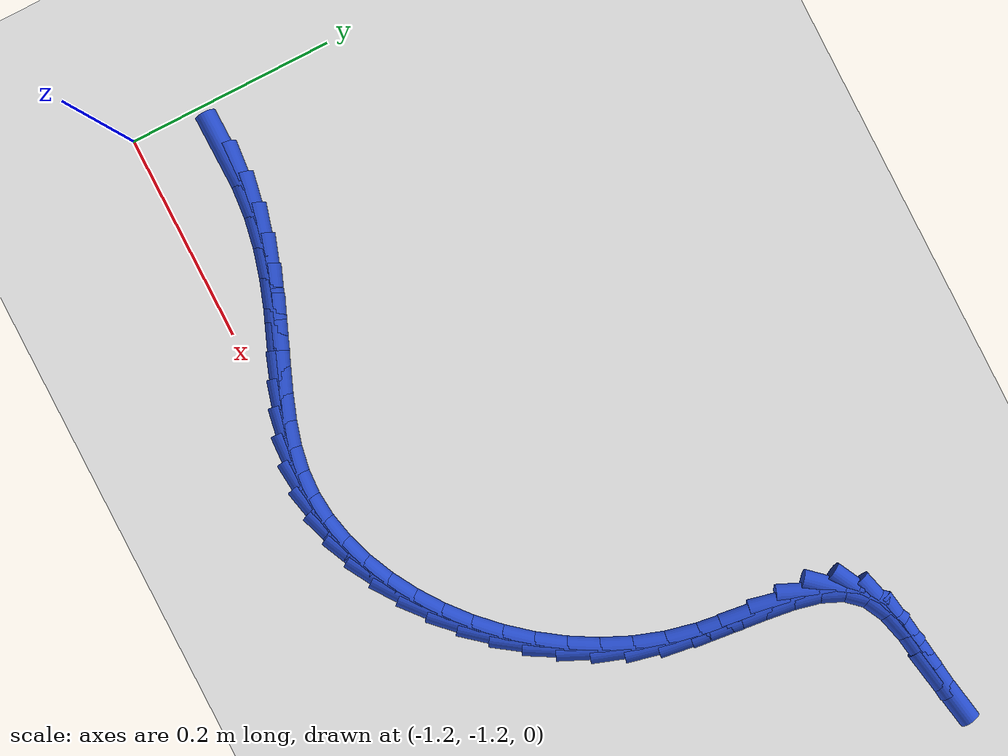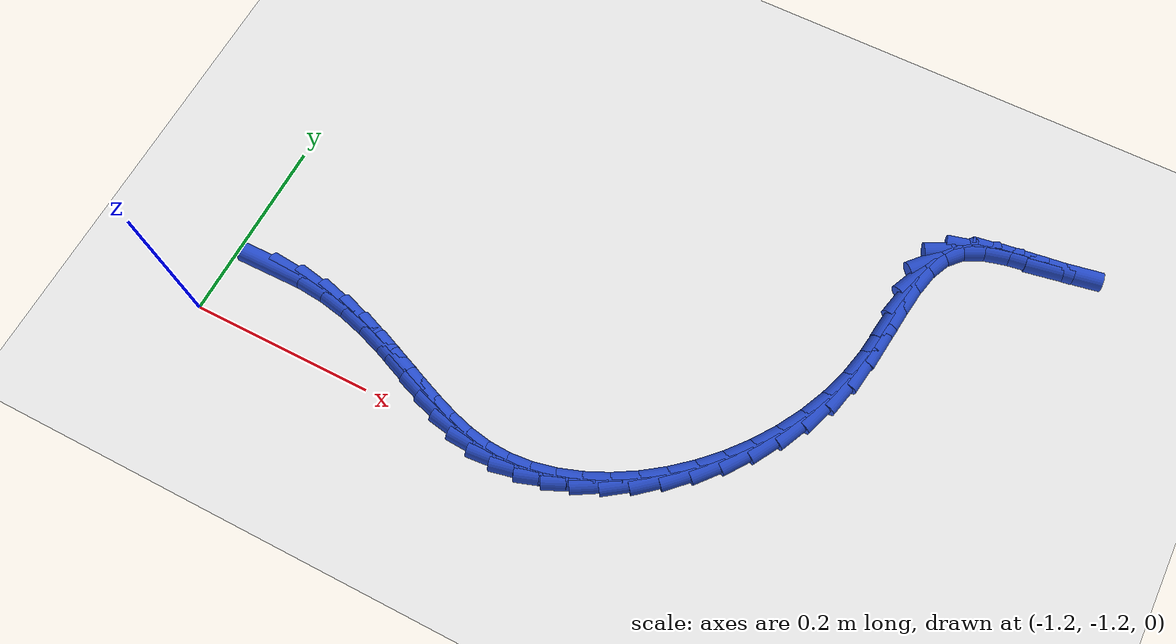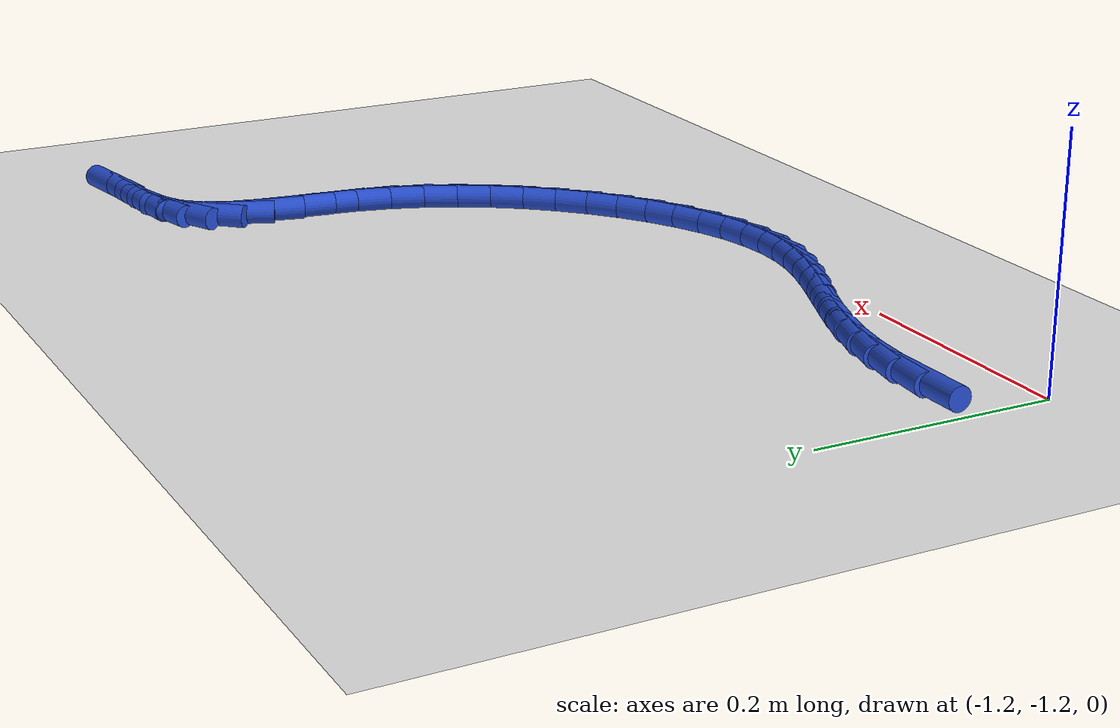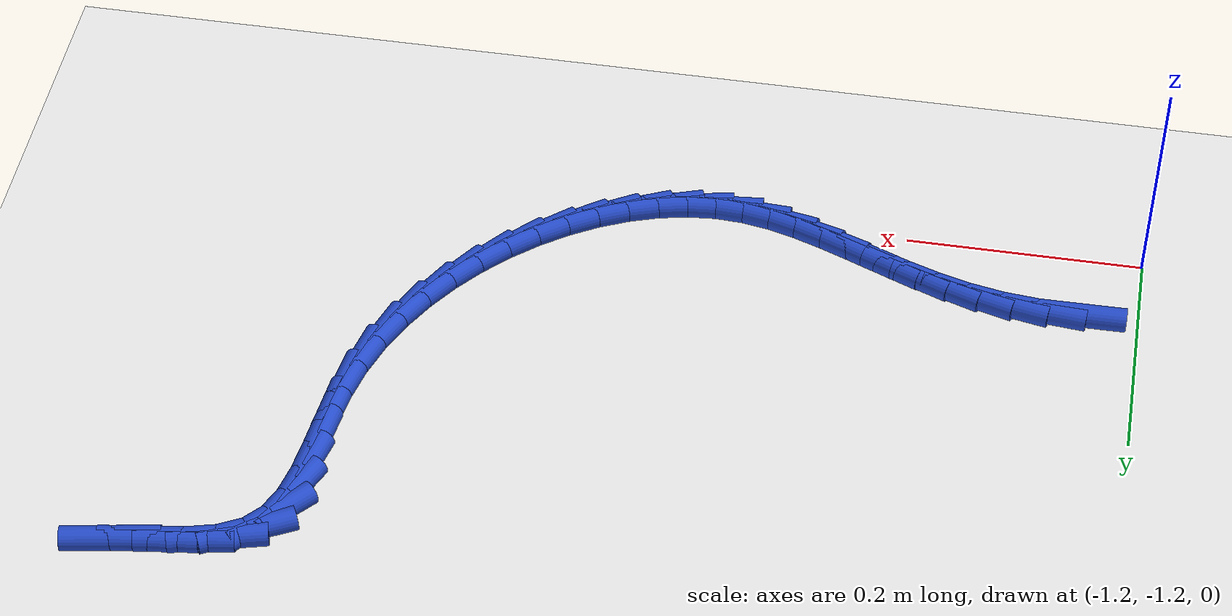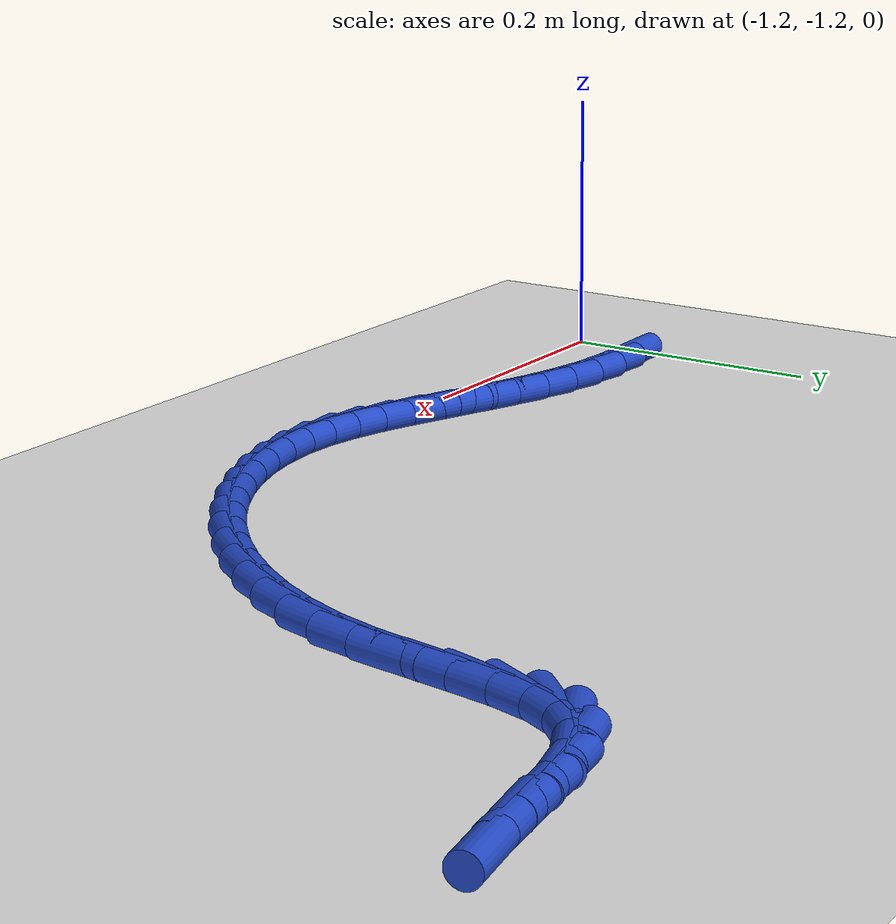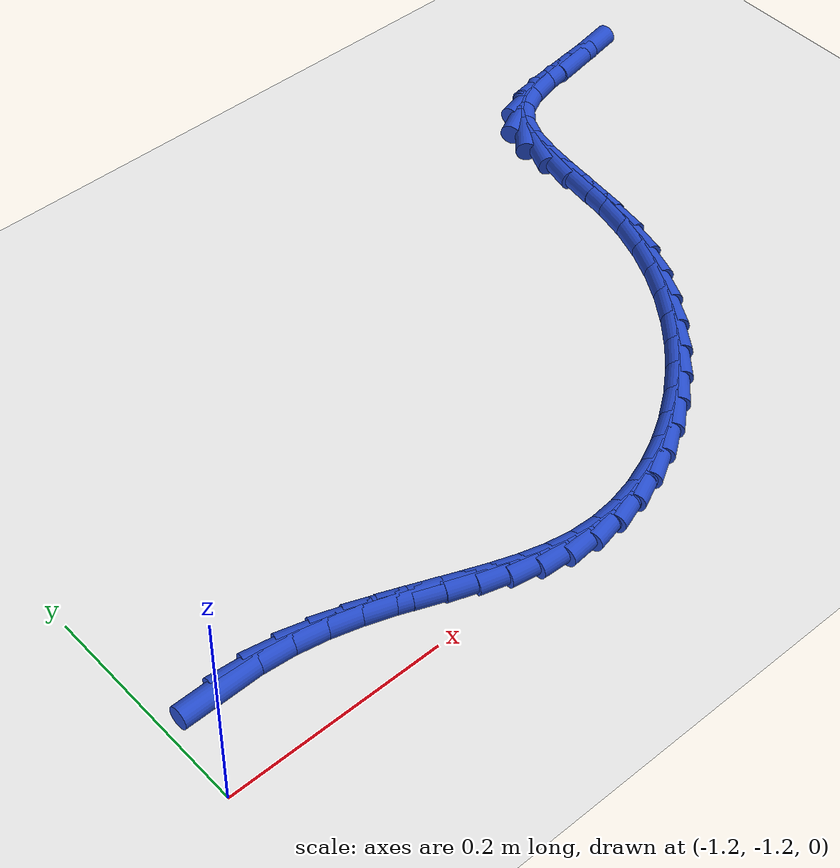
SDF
<sdf version="1.6">
 <world name="default">
  <model name="ground_plane">
   <static>1</static>
   <link name="link">
    <collision name="collision">
     <geometry><plane><normal>0 0 1</normal><size>100 100</size></plane></geometry>
     <surface><friction><ode><mu>100</mu><mu2>50</mu2></ode></friction></surface>
    </collision>
    <visual name="visual">
     <cast_shadows>0</cast_shadows>
     <geometry><plane><normal>0 0 1</normal><size>100 100</size></plane></geometry>
     <material>
      <script><uri>file://media/materials/scripts/gazebo.material</uri><name>Gazebo/WhiteGlow</name></script>
     </material>
    </visual>
   </link>
  </model>
  <model name="line">
   <link name="link_220">
    <pose>-1.1498865652899333 -1.1282311060308476 0.01 0 1.57 0.01088666979280552</pose>
    <collision name="collision">
     <geometry><cylinder><radius>0.01</radius><length>0.08</length></cylinder></geometry>
    </collision>
    <visual name="visual">
     <material>
      <script><name>Gazebo/Blue</name><uri>file://media/materials/scripts/gazebo.material</uri></script>
     </material>
     <geometry><cylinder><radius>0.01</radius><length>0.08</length></cylinder></geometry>
    </visual>
   </link>
   <link name="link_221">
    <pose>-1.1173441668186235 -1.1278768136874542 0.01 0 1.57 -0.0900187390896516</pose>
    <collision name="collision">
     <geometry><cylinder><radius>0.01</radius><length>0.08</length></cylinder></geometry>
    </collision>
    <visual name="visual">
     <material>
      <script><name>Gazebo/Blue</name><uri>file://media/materials/scripts/gazebo.material</uri></script>
     </material>
     <geometry><cylinder><radius>0.01</radius><length>0.08</length></cylinder></geometry>
    </visual>
   </link>
   <link name="link_222">
    <pose>-1.0865902126110436 -1.1306527480653084 0.01 0 1.57 -0.1890162700893553</pose>
    <collision name="collision">
     <geometry><cylinder><radius>0.01</radius><length>0.08</length></cylinder></geometry>
    </collision>
    <visual name="visual">
     <material>
      <script><name>Gazebo/Blue</name><uri>file://media/materials/scripts/gazebo.material</uri></script>
     </material>
     <geometry><cylinder><radius>0.01</radius><length>0.08</length></cylinder></geometry>
    </visual>
   </link>
   <link name="link_223">
    <pose>-1.0575758066208154 -1.1362032014689685 0.01 0 1.57 -0.27192037209295516</pose>
    <collision name="collision">
     <geometry><cylinder><radius>0.01</radius><length>0.08</length></cylinder></geometry>
    </collision>
    <visual name="visual">
     <material>
      <script><name>Gazebo/Blue</name><uri>file://media/materials/scripts/gazebo.material</uri></script>
     </material>
     <geometry><cylinder><radius>0.01</radius><length>0.08</length></cylinder></geometry>
    </visual>
   </link>
   <link name="link_224">
    <pose>-1.0300545272022694 -1.14387686901477 0.01 0 1.57 -0.3349607119613422</pose>
    <collision name="collision">
     <geometry><cylinder><radius>0.01</radius><length>0.08</length></cylinder></geometry>
    </collision>
    <visual name="visual">
     <material>
      <script><name>Gazebo/Blue</name><uri>file://media/materials/scripts/gazebo.material</uri></script>
     </material>
     <geometry><cylinder><radius>0.01</radius><length>0.08</length></cylinder></geometry>
    </visual>
   </link>
   <link name="link_225">
    <pose>-1.0037799527097366 -1.1530224458190488 0.01 0 1.57 -0.37560103164478287</pose>
    <collision name="collision">
     <geometry><cylinder><radius>0.01</radius><length>0.08</length></cylinder></geometry>
    </collision>
    <visual name="visual">
     <material>
      <script><name>Gazebo/Blue</name><uri>file://media/materials/scripts/gazebo.material</uri></script>
     </material>
     <geometry><cylinder><radius>0.01</radius><length>0.08</length></cylinder></geometry>
    </visual>
   </link>
   <link name="link_226">
    <pose>-0.9785056614975474 -1.1629886269981395 0.01 0 1.57 -0.39196040534558957</pose>
    <collision name="collision">
     <geometry><cylinder><radius>0.01</radius><length>0.08</length></cylinder></geometry>
    </collision>
    <visual name="visual">
     <material>
      <script><name>Gazebo/Blue</name><uri>file://media/materials/scripts/gazebo.material</uri></script>
     </material>
     <geometry><cylinder><radius>0.01</radius><length>0.08</length></cylinder></geometry>
    </visual>
   </link>
   <link name="link_227">
    <pose>-0.9539852319200326 -1.1731241076683792 0.01 0 1.57 -0.3822384118539963</pose>
    <collision name="collision">
     <geometry><cylinder><radius>0.01</radius><length>0.08</length></cylinder></geometry>
    </collision>
    <visual name="visual">
     <material>
      <script><name>Gazebo/Blue</name><uri>file://media/materials/scripts/gazebo.material</uri></script>
     </material>
     <geometry><cylinder><radius>0.01</radius><length>0.08</length></cylinder></geometry>
    </visual>
   </link>
   <link name="link_228">
    <pose>-0.929972242331523 -1.1827775829461027 0.01 0 1.57 -0.3444166726869804</pose>
    <collision name="collision">
     <geometry><cylinder><radius>0.01</radius><length>0.08</length></cylinder></geometry>
    </collision>
    <visual name="visual">
     <material>
      <script><name>Gazebo/Blue</name><uri>file://media/materials/scripts/gazebo.material</uri></script>
     </material>
     <geometry><cylinder><radius>0.01</radius><length>0.08</length></cylinder></geometry>
    </visual>
   </link>
   <link name="link_229">
    <pose>-0.9062202710863491 -1.1912977479476456 0.01 0 1.57 -0.2764854024331126</pose>
    <collision name="collision">
     <geometry><cylinder><radius>0.01</radius><length>0.08</length></cylinder></geometry>
    </collision>
    <visual name="visual">
     <material>
      <script><name>Gazebo/Blue</name><uri>file://media/materials/scripts/gazebo.material</uri></script>
     </material>
     <geometry><cylinder><radius>0.01</radius><length>0.08</length></cylinder></geometry>
    </visual>
   </link>
   <link name="link_230">
    <pose>-0.8824828965388418 -1.198033297789344 0.01 0 1.57 -0.1774937372604646</pose>
    <collision name="collision">
     <geometry><cylinder><radius>0.01</radius><length>0.08</length></cylinder></geometry>
    </collision>
    <visual name="visual">
     <material>
      <script><name>Gazebo/Blue</name><uri>file://media/materials/scripts/gazebo.material</uri></script>
     </material>
     <geometry><cylinder><radius>0.01</radius><length>0.08</length></cylinder></geometry>
    </visual>
   </link>
   <link name="link_231">
    <pose>-0.8585136970433318 -1.2023329275875332 0.01 0 1.57 -0.04981537293117946</pose>
    <collision name="collision">
     <geometry><cylinder><radius>0.01</radius><length>0.08</length></cylinder></geometry>
    </collision>
    <visual name="visual">
     <material>
      <script><name>Gazebo/Blue</name><uri>file://media/materials/scripts/gazebo.material</uri></script>
     </material>
     <geometry><cylinder><radius>0.01</radius><length>0.08</length></cylinder></geometry>
    </visual>
   </link>
   <link name="link_232">
    <pose>-0.834070172733832 -1.2035515991070314 0.01 0 1.57 0.08734566797505698</pose>
    <collision name="collision">
     <geometry><cylinder><radius>0.01</radius><length>0.08</length></cylinder></geometry>
    </collision>
    <visual name="visual">
     <material>
      <script><name>Gazebo/Blue</name><uri>file://media/materials/scripts/gazebo.material</uri></script>
     </material>
     <geometry><cylinder><radius>0.01</radius><length>0.08</length></cylinder></geometry>
    </visual>
   </link>
   <link name="link_233">
    <pose>-0.8091111502045506 -1.2013659755488426 0.01 0 1.57 0.21256745456513768</pose>
    <collision name="collision">
     <geometry><cylinder><radius>0.01</radius><length>0.08</length></cylinder></geometry>
    </collision>
    <visual name="visual">
     <material>
      <script><name>Gazebo/Blue</name><uri>file://media/materials/scripts/gazebo.material</uri></script>
     </material>
     <geometry><cylinder><radius>0.01</radius><length>0.08</length></cylinder></geometry>
    </visual>
   </link>
   <link name="link_234">
    <pose>-0.7838893995719295 -1.1959224152209633 0.01 0 1.57 0.3258552732110749</pose>
    <collision name="collision">
     <geometry><cylinder><radius>0.01</radius><length>0.08</length></cylinder></geometry>
    </collision>
    <visual name="visual">
     <material>
      <script><name>Gazebo/Blue</name><uri>file://media/materials/scripts/gazebo.material</uri></script>
     </material>
     <geometry><cylinder><radius>0.01</radius><length>0.08</length></cylinder></geometry>
    </visual>
   </link>
   <link name="link_235">
    <pose>-0.7586809718900132 -1.1874044772596084 0.01 0 1.57 0.4293484390976748</pose>
    <collision name="collision">
     <geometry><cylinder><radius>0.01</radius><length>0.08</length></cylinder></geometry>
    </collision>
    <visual name="visual">
     <material>
      <script><name>Gazebo/Blue</name><uri>file://media/materials/scripts/gazebo.material</uri></script>
     </material>
     <geometry><cylinder><radius>0.01</radius><length>0.08</length></cylinder></geometry>
    </visual>
   </link>
   <link name="link_236">
    <pose>-0.7337619182128442 -1.1759957208009915 0.01 0 1.57 0.5253044904656629</pose>
    <collision name="collision">
     <geometry><cylinder><radius>0.01</radius><length>0.08</length></cylinder></geometry>
    </collision>
    <visual name="visual">
     <material>
      <script><name>Gazebo/Blue</name><uri>file://media/materials/scripts/gazebo.material</uri></script>
     </material>
     <geometry><cylinder><radius>0.01</radius><length>0.08</length></cylinder></geometry>
    </visual>
   </link>
   <link name="link_237">
    <pose>-0.7094082895944653 -1.1618797049813274 0.01 0 1.57 0.6158797733947019</pose>
    <collision name="collision">
     <geometry><cylinder><radius>0.01</radius><length>0.08</length></cylinder></geometry>
    </collision>
    <visual name="visual">
     <material>
      <script><name>Gazebo/Blue</name><uri>file://media/materials/scripts/gazebo.material</uri></script>
     </material>
     <geometry><cylinder><radius>0.01</radius><length>0.08</length></cylinder></geometry>
    </visual>
   </link>
   <link name="link_238">
    <pose>-0.6858961370889196 -1.1452399889368299 0.01 0 1.57 0.7030516046852788</pose>
    <collision name="collision">
     <geometry><cylinder><radius>0.01</radius><length>0.08</length></cylinder></geometry>
    </collision>
    <visual name="visual">
     <material>
      <script><name>Gazebo/Blue</name><uri>file://media/materials/scripts/gazebo.material</uri></script>
     </material>
     <geometry><cylinder><radius>0.01</radius><length>0.08</length></cylinder></geometry>
    </visual>
   </link>
   <link name="link_239">
    <pose>-0.6635015117502501 -1.1262601318037133 0.01 0 1.57 0.7886112525976718</pose>
    <collision name="collision">
     <geometry><cylinder><radius>0.01</radius><length>0.08</length></cylinder></geometry>
    </collision>
    <visual name="visual">
     <material>
      <script><name>Gazebo/Blue</name><uri>file://media/materials/scripts/gazebo.material</uri></script>
     </material>
     <geometry><cylinder><radius>0.01</radius><length>0.08</length></cylinder></geometry>
    </visual>
   </link>
   <link name="link_240">
    <pose>-0.6425004646324997 -1.105123692718192 0.01 0 1.57 0.8741831205366507</pose>
    <collision name="collision">
     <geometry><cylinder><radius>0.01</radius><length>0.08</length></cylinder></geometry>
    </collision>
    <visual name="visual">
     <material>
      <script><name>Gazebo/Blue</name><uri>file://media/materials/scripts/gazebo.material</uri></script>
     </material>
     <geometry><cylinder><radius>0.01</radius><length>0.08</length></cylinder></geometry>
    </visual>
   </link>
   <link name="link_241">
    <pose>-0.623169046789711 -1.08201423081648 0.01 0 1.57 0.9612441313684588</pose>
    <collision name="collision">
     <geometry><cylinder><radius>0.01</radius><length>0.08</length></cylinder></geometry>
    </collision>
    <visual name="visual">
     <material>
      <script><name>Gazebo/Blue</name><uri>file://media/materials/scripts/gazebo.material</uri></script>
     </material>
     <geometry><cylinder><radius>0.01</radius><length>0.08</length></cylinder></geometry>
    </visual>
   </link>
   <link name="link_242">
    <pose>-0.605783309275927 -1.0571153052347915 0.01 0 1.57 1.0511273542369806</pose>
    <collision name="collision">
     <geometry><cylinder><radius>0.01</radius><length>0.08</length></cylinder></geometry>
    </collision>
    <visual name="visual">
     <material>
      <script><name>Gazebo/Blue</name><uri>file://media/materials/scripts/gazebo.material</uri></script>
     </material>
     <geometry><cylinder><radius>0.01</radius><length>0.08</length></cylinder></geometry>
    </visual>
   </link>
   <link name="link_243">
    <pose>-0.5906193031451911 -1.030610475109341 0.01 0 1.57 1.1449985017743254</pose>
    <collision name="collision">
     <geometry><cylinder><radius>0.01</radius><length>0.08</length></cylinder></geometry>
    </collision>
    <visual name="visual">
     <material>
      <script><name>Gazebo/Blue</name><uri>file://media/materials/scripts/gazebo.material</uri></script>
     </material>
     <geometry><cylinder><radius>0.01</radius><length>0.08</length></cylinder></geometry>
    </visual>
   </link>
   <link name="link_244">
    <pose>-0.5779530794515458 -1.0026832995763426 0.01 0 1.57 1.2437967461995403</pose>
    <collision name="collision">
     <geometry><cylinder><radius>0.01</radius><length>0.08</length></cylinder></geometry>
    </collision>
    <visual name="visual">
     <material>
      <script><name>Gazebo/Blue</name><uri>file://media/materials/scripts/gazebo.material</uri></script>
     </material>
     <geometry><cylinder><radius>0.01</radius><length>0.08</length></cylinder></geometry>
    </visual>
   </link>
   <link name="link_245">
    <pose>-0.5680606892490342 -0.9735173377720108 0.01 0 1.57 1.3477195455041073</pose>
    <collision name="collision">
     <geometry><cylinder><radius>0.01</radius><length>0.08</length></cylinder></geometry>
    </collision>
    <visual name="visual">
     <material>
      <script><name>Gazebo/Blue</name><uri>file://media/materials/scripts/gazebo.material</uri></script>
     </material>
     <geometry><cylinder><radius>0.01</radius><length>0.08</length></cylinder></geometry>
    </visual>
   </link>
   <link name="link_246">
    <pose>-0.5612063346415961 -0.9433022824421808 0.01 0 1.57 1.4334036689588372</pose>
    <collision name="collision">
     <geometry><cylinder><radius>0.01</radius><length>0.08</length></cylinder></geometry>
    </collision>
    <visual name="visual">
     <material>
      <script><name>Gazebo/Blue</name><uri>file://media/materials/scripts/gazebo.material</uri></script>
     </material>
     <geometry><cylinder><radius>0.01</radius><length>0.08</length></cylinder></geometry>
    </visual>
   </link>
   <link name="link_247">
    <pose>-0.5569595807102286 -0.9125874052228276 0.01 0 1.57 1.4669958378656638</pose>
    <collision name="collision">
     <geometry><cylinder><radius>0.01</radius><length>0.08</length></cylinder></geometry>
    </collision>
    <visual name="visual">
     <material>
      <script><name>Gazebo/Blue</name><uri>file://media/materials/scripts/gazebo.material</uri></script>
     </material>
     <geometry><cylinder><radius>0.01</radius><length>0.08</length></cylinder></geometry>
    </visual>
   </link>
   <link name="link_248">
    <pose>-0.5538225744994015 -0.8824745267506429 0.01 0 1.57 1.4439912523211738</pose>
    <collision name="collision">
     <geometry><cylinder><radius>0.01</radius><length>0.08</length></cylinder></geometry>
    </collision>
    <visual name="visual">
     <material>
      <script><name>Gazebo/Blue</name><uri>file://media/materials/scripts/gazebo.material</uri></script>
     </material>
     <geometry><cylinder><radius>0.01</radius><length>0.08</length></cylinder></geometry>
    </visual>
   </link>
   <link name="link_249">
    <pose>-0.5502067170406979 -0.8541124423404883 0.01 0 1.57 1.3511928621020297</pose>
    <collision name="collision">
     <geometry><cylinder><radius>0.01</radius><length>0.08</length></cylinder></geometry>
    </collision>
    <visual name="visual">
     <material>
      <script><name>Gazebo/Blue</name><uri>file://media/materials/scripts/gazebo.material</uri></script>
     </material>
     <geometry><cylinder><radius>0.01</radius><length>0.08</length></cylinder></geometry>
    </visual>
   </link>
   <link name="link_250">
    <pose>-0.5445234093657004 -0.8286499473072274 0.01 0 1.57 1.1595355444523134</pose>
    <collision name="collision">
     <geometry><cylinder><radius>0.01</radius><length>0.08</length></cylinder></geometry>
    </collision>
    <visual name="visual">
     <material>
      <script><name>Gazebo/Blue</name><uri>file://media/materials/scripts/gazebo.material</uri></script>
     </material>
     <geometry><cylinder><radius>0.01</radius><length>0.08</length></cylinder></geometry>
    </visual>
   </link>
   <link name="link_251">
    <pose>-0.5351840525059917 -0.8072358369657231 0.01 0 1.57 0.838509728821987</pose>
    <collision name="collision">
     <geometry><cylinder><radius>0.01</radius><length>0.08</length></cylinder></geometry>
    </collision>
    <visual name="visual">
     <material>
      <script><name>Gazebo/Blue</name><uri>file://media/materials/scripts/gazebo.material</uri></script>
     </material>
     <geometry><cylinder><radius>0.01</radius><length>0.08</length></cylinder></geometry>
    </visual>
   </link>
   <link name="link_252">
    <pose>-0.5206024102169172 -0.7910167814863959 0.01 0 1.57 0.4776309608262773</pose>
    <collision name="collision">
     <geometry><cylinder><radius>0.01</radius><length>0.08</length></cylinder></geometry>
    </collision>
    <visual name="visual">
     <material>
      <script><name>Gazebo/Blue</name><uri>file://media/materials/scripts/gazebo.material</uri></script>
     </material>
     <geometry><cylinder><radius>0.01</radius><length>0.08</length></cylinder></geometry>
    </visual>
   </link>
   <link name="link_253">
    <pose>-0.500042352673852 -0.7803748254993325 0.01 0 1.57 0.2556188024576241</pose>
    <collision name="collision">
     <geometry><cylinder><radius>0.01</radius><length>0.08</length></cylinder></geometry>
    </collision>
    <visual name="visual">
     <material>
      <script><name>Gazebo/Blue</name><uri>file://media/materials/scripts/gazebo.material</uri></script>
     </material>
     <geometry><cylinder><radius>0.01</radius><length>0.08</length></cylinder></geometry>
    </visual>
   </link>
   <link name="link_254">
    <pose>-0.47487410170548655 -0.7737974622783368 0.01 0 1.57 0.15239843004709472</pose>
    <collision name="collision">
     <geometry><cylinder><radius>0.01</radius><length>0.08</length></cylinder></geometry>
    </collision>
    <visual name="visual">
     <material>
      <script><name>Gazebo/Blue</name><uri>file://media/materials/scripts/gazebo.material</uri></script>
     </material>
     <geometry><cylinder><radius>0.01</radius><length>0.08</length></cylinder></geometry>
    </visual>
   </link>
   <link name="link_255">
    <pose>-0.4467884905617109 -0.7694838121648411 0.01 0 1.57 0.13062471847903187</pose>
    <collision name="collision">
     <geometry><cylinder><radius>0.01</radius><length>0.08</length></cylinder></geometry>
    </collision>
    <visual name="visual">
     <material>
      <script><name>Gazebo/Blue</name><uri>file://media/materials/scripts/gazebo.material</uri></script>
     </material>
     <geometry><cylinder><radius>0.01</radius><length>0.08</length></cylinder></geometry>
    </visual>
   </link>
   <link name="link_256">
    <pose>-0.4174763524924151 -0.7656329955002786 0.01 0 1.57 0.1777326127662651</pose>
    <collision name="collision">
     <geometry><cylinder><radius>0.01</radius><length>0.08</length></cylinder></geometry>
    </collision>
    <visual name="visual">
     <material>
      <script><name>Gazebo/Blue</name><uri>file://media/materials/scripts/gazebo.material</uri></script>
     </material>
     <geometry><cylinder><radius>0.01</radius><length>0.08</length></cylinder></geometry>
    </visual>
   </link>
  </model>
 </world>
</sdf>
